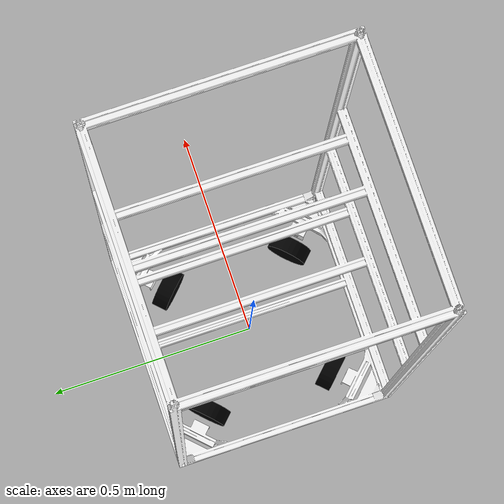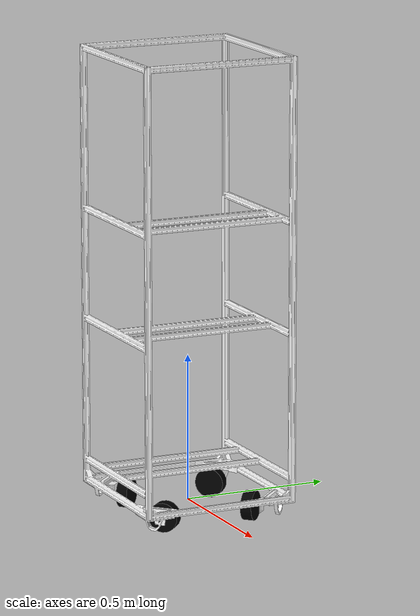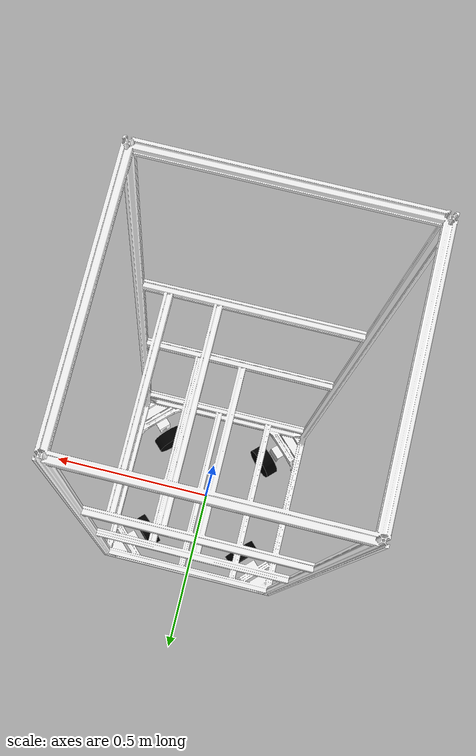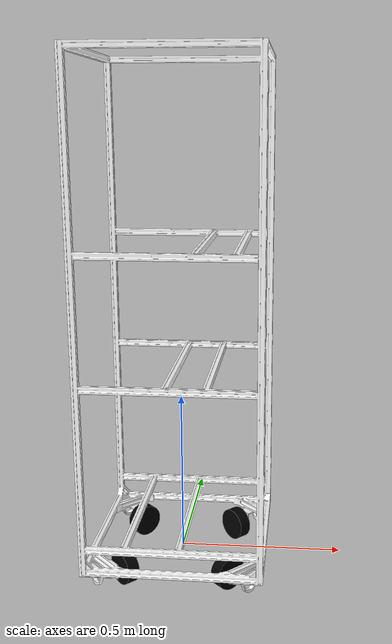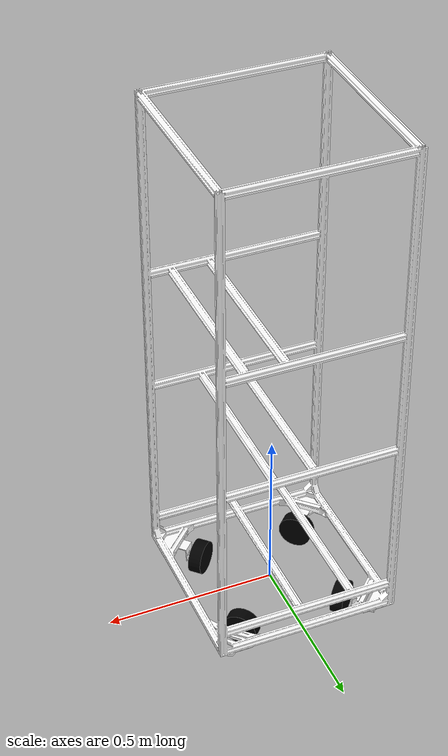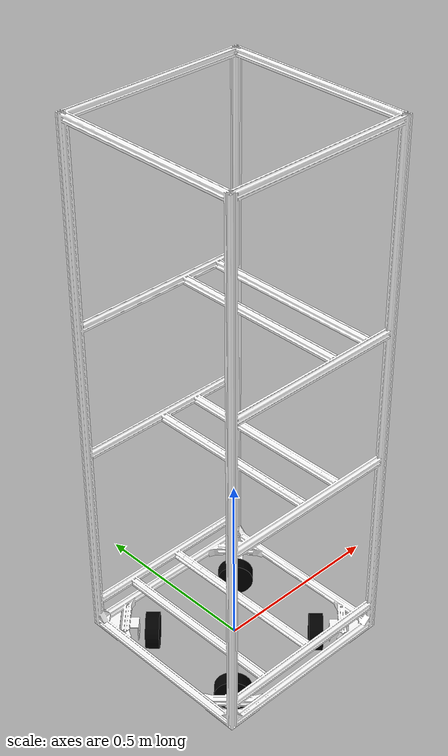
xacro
<?xml version="1.0"?>
<robot xmlns:xacro="http://www.ros.org/wiki/xacro"  name="robot">

    <!-- this will include all contents of robot_core.xacro first -->
    <gazebo>
        <plugin name="gazebo_ros_control" filename="libgazebo_ros_control.so"/>
    </gazebo>
    <xacro:include filename="robot_core.xacro" />
    <xacro:include filename="colours.xacro" />

</robot>

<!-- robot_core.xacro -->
<robot xmlns:xacro="http://www.ros.org/wiki/xacro">

    <xacro:include filename="inertial_macros.xacro"/>

    <!-- links and joints go here -->

    <!-- The rest of the robot can be described from base_link, which is the centre point of the four driving wheels -->
    <link name="base_link">
    </link>

    <!-- chassis joint goes here. It connects chassis to base_link via fixed joint -->
    <joint name="chassis_joint" type="fixed">
        <parent link="base_link"/>
        <child link="chassis"/>
        <origin xyz="0 0 0"/>
    </joint>
    <!-- chassis description goes here. It describes the chassis of robocock which is a 54cm x 54cm x 150cm box -->
    <link name="chassis">
        <visual>
            <!-- by default, the origin is centred around the link origin, so offset it by half the height -->
            <geometry>
                <mesh filename="package://robocock/meshes/frame_ultra_low_poly.stl"/>
            </geometry>
            <material name="white"/>
        </visual>
        <!-- physics model -->
        <collision>
            <origin xyz="0 0 0.75" rpy="0 0 0"/>
            <geometry>
                <box size="0.54 0.54 1.5"/>
            </geometry>
        </collision>
        <xacro:inertial_box mass="10" x="0.54" y="0.54" z="1.5">
            <origin xyz="0 0 0.75" rpy="0 0 0"/>
        </xacro:inertial_box>
    </link>
    <!-- gazebo specific description -->
    <gazebo reference="chassis">
        <material>Gazebo/White</material>
    </gazebo>

    <!-- FRONT LEFT WHEEL AKA wheel_1 -->
    <joint name="wheel_1_joint" type="continuous">
        <parent link="base_link"/>
        <child link="wheel_1"/>
        <origin xyz="0.1575 0.1575 0" rpy="-${pi/2} 0 -${pi/4}"/>
        <axis xyz="0 0 1"/>
    </joint>

    <link name="wheel_1">
        <visual>
            <geometry>
                <cylinder length="0.038" radius="0.05" />
            </geometry>
            <material name="black"/>
        </visual>
        <collision>
            <geometry>
                <cylinder length="0.038" radius="0.05" />
            </geometry>
        </collision>
        <xacro:inertial_cylinder mass="0.2" length="0.038" radius="0.05">
            <origin xyz="0 0 0" rpy="0 0 0"/>
        </xacro:inertial_cylinder>
    </link>

    <gazebo reference="wheel_1">
        <material>Gazebo/Black</material>
        <mu1 value="0.2"/>
        <mu2 value="1.5"/>
        <kp value="10000000.0" />
        <kd value="10000.0" />
        <fdir1 value="0 0 1"/>
        <maxContacts value= "1"/>
    </gazebo>

    <!-- FRONT RIGHT WHEEL AKA wheel_2 -->
    <joint name="wheel_2_joint" type="continuous">
        <parent link="base_link"/>
        <child link="wheel_2"/>
        <origin xyz="0.1575 -0.1575 0" rpy="${pi/2} 0 ${pi/4}"/>
        <axis xyz="0 0 -1"/>
    </joint>

    <link name="wheel_2">
        <visual>
            <geometry>
                <cylinder length="0.038" radius="0.05" />
            </geometry>
            <material name="black"/>
        </visual>
        <collision>
            <geometry>
                <cylinder length="0.038" radius="0.05" />
            </geometry>
        </collision>
        <xacro:inertial_cylinder mass="0.2" length="0.038" radius="0.05">
            <origin xyz="0 0 0" rpy="0 0 0"/>
        </xacro:inertial_cylinder>
    </link>

    <gazebo reference="wheel_2">
        <material>Gazebo/Black</material>
        <mu1 value="0.2"/>
        <mu2 value="1.5"/>
        <kp value="10000000.0" />
        <kd value="10000.0" />
        <fdir1 value="0 0 1"/>
        <maxContacts value= "1"/>
    </gazebo>

    <!-- REAR LEFT WHEEL AKA wheel_3 -->
    <joint name="wheel_3_joint" type="continuous">
        <parent link="base_link"/>
        <child link="wheel_3"/>
        <origin xyz="-0.1575 0.1575 0" rpy="-${pi/2} 0 ${pi/4}"/>
        <axis xyz="0 0 1"/>
    </joint>

    <link name="wheel_3">
        <visual>
            <geometry>
                <cylinder length="0.038" radius="0.05" />
            </geometry>
            <material name="black"/>
        </visual>
        <collision>
            <geometry>
                <cylinder length="0.038" radius="0.05" />
            </geometry>
        </collision>
        <xacro:inertial_cylinder mass="0.2" length="0.038" radius="0.05">
            <origin xyz="0 0 0" rpy="0 0 0"/>
        </xacro:inertial_cylinder>
    </link>

    <gazebo reference="wheel_3">
        <material>Gazebo/Black</material>
        <mu1 value="0.2"/>
        <mu2 value="1.5"/>
        <kp value="10000000.0" />
        <kd value="10000.0" />
        <fdir1 value="0 0 1"/>
        <maxContacts value= "1"/>
    </gazebo>

    <!-- REAR RIGHT WHEEL AKA wheel_4 -->
    <joint name="wheel_4_joint" type="continuous">
        <parent link="base_link"/>
        <child link="wheel_4"/>
        <origin xyz="-0.1575 -0.1575 0" rpy="${pi/2} 0 -${pi/4}"/>
        <axis xyz="0 0 -1"/>
    </joint>

    <link name="wheel_4">
        <visual>
            <geometry>
                <cylinder length="0.038" radius="0.05" />
            </geometry>
            <material name="black"/>
        </visual>
        <collision>
            <geometry>
                <cylinder length="0.038" radius="0.05" />
            </geometry>
        </collision>
        <xacro:inertial_cylinder mass="0.2" length="0.038" radius="0.05">
            <origin xyz="0 0 0" rpy="0 0 0"/>
        </xacro:inertial_cylinder>
    </link>

    <gazebo reference="wheel_4">
        <material>Gazebo/Black</material>
        <mu1 value="0.2"/>
        <mu2 value="1.5"/>
        <kp value="10000000.0" />
        <kd value="10000.0" />
        <fdir1 value="0 0 1"/>
        <maxContacts value= "1"/>
    </gazebo>

    <!-- Make Gazebo publish joint states -->
    <gazebo>
        <plugin name="gazebo_row_joint_state_publisher"
            filename="libgazebo_ros_joint_state_publisher.so">
            <update_rate>30</update_rate>
            <joint_name>wheel_1_joint</joint_name>
            <joint_name>wheel_2_joint</joint_name>
            <joint_name>wheel_3_joint</joint_name>
            <joint_name>wheel_4_joint</joint_name>
        </plugin>
    </gazebo>

</robot>

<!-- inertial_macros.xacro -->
<robot xmlns:xacro="http://www.ros.org/wiki/xacro" >

    <!-- Specify some standard inertial calculations https://en.wikipedia.org/wiki/List_of_moments_of_inertia -->
    <!-- These make use of xacro's mathematical functionality -->

    <xacro:macro name="inertial_sphere" params="mass radius *origin">
        <inertial>
            <xacro:insert_block name="origin"/>
            <mass value="${mass}" />
            <inertia ixx="${(2/5) * mass * (radius*radius)}" ixy="0.0" ixz="0.0"
                    iyy="${(2/5) * mass * (radius*radius)}" iyz="0.0"
                    izz="${(2/5) * mass * (radius*radius)}" />
        </inertial>
    </xacro:macro>

    <xacro:macro name="inertial_box" params="mass x y z *origin">
        <inertial>
            <xacro:insert_block name="origin"/>
            <mass value="${mass}" />
            <inertia ixx="${(1/12) * mass * (y*y+z*z)}" ixy="0.0" ixz="0.0"
                    iyy="${(1/12) * mass * (x*x+z*z)}" iyz="0.0"
                    izz="${(1/12) * mass * (x*x+y*y)}" />
        </inertial>
    </xacro:macro>

    <xacro:macro name="inertial_cylinder" params="mass length radius *origin">
        <inertial>
            <xacro:insert_block name="origin"/>
            <mass value="${mass}" />
            <inertia ixx="${(1/12) * mass * (3*radius*radius + length*length)}" ixy="0.0" ixz="0.0"
                    iyy="${(1/12) * mass * (3*radius*radius + length*length)}" iyz="0.0"
                    izz="${(1/2) * mass * (radius*radius)}" />
        </inertial>
    </xacro:macro>

</robot>

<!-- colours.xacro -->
<robot xmlns:xacro="http://www.ros.org/wiki/xacro">

    <!-- this file defines all material aka colour used in gazebo-->

    <material name="white">
        <color rgba="1 1 1 1"/>
    </material>

    <material name="orange">
        <color rgba="1 0.3 0.1 1"/>
    </material>

    <material name="blue">
        <color rgba="0.2 0.2 1 1"/>
    </material>

    <material name="black">
        <color rgba="0 0 0 1"/>
    </material>

</robot>
